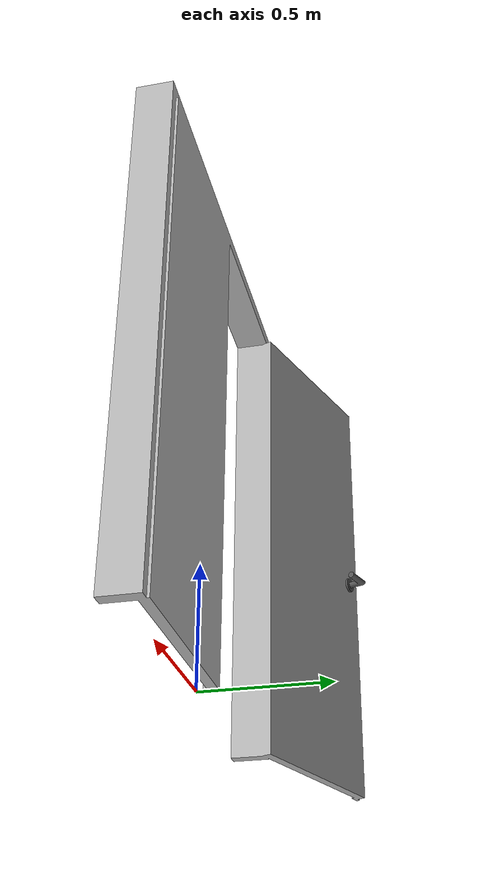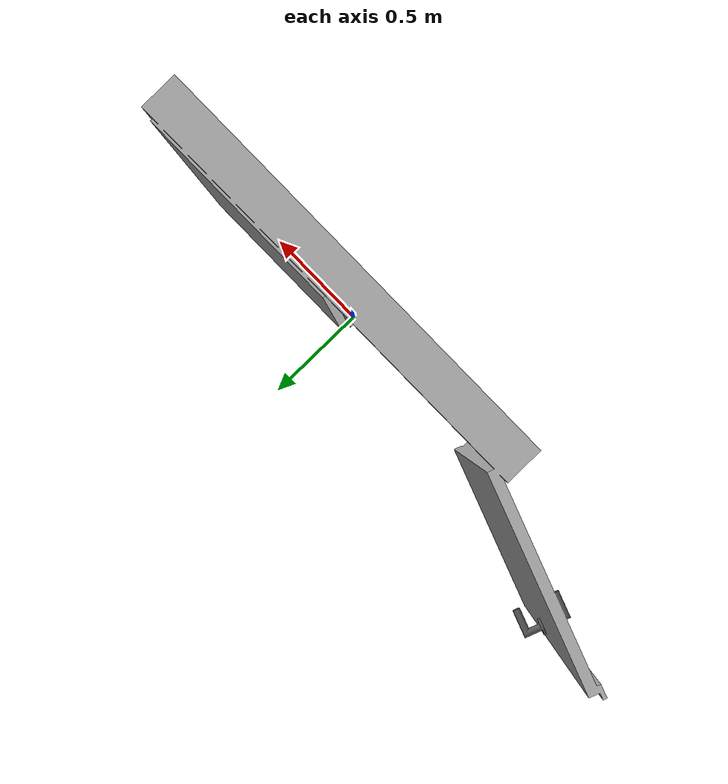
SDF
<?xml version="1.0"?>

<sdf version="1.6">
  <model name='door_160_open'>
    <static>true</static>
    <link name="body">

        <visual name="visual">
          <geometry>
            <mesh><uri>model://models/door_160_open/meshes/door_160_open.dae</uri></mesh>
          </geometry>
        </visual>

        <collision name="collision">
          <geometry>
            <mesh><uri>model://models/door_160_open/meshes/door_160_open.dae</uri></mesh>
          </geometry>
        </collision>

    </link>
  </model>
</sdf>
